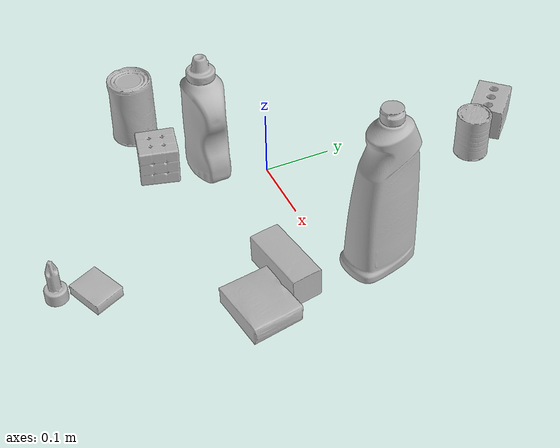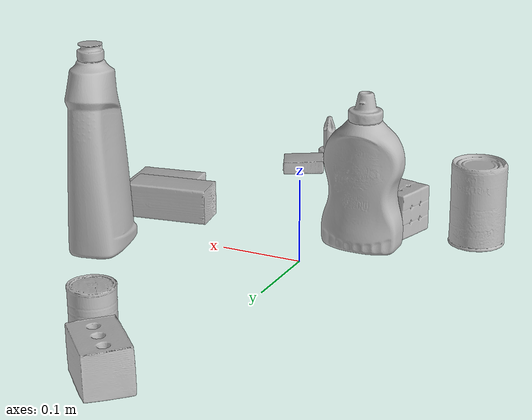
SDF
<sdf version="1.4">
  <world name="default">
    <light name="light1" type="point">
      <pose>0 0 1 0 0 0</pose>
      <diffuse>3 3 3 1</diffuse>
      <specular>3 3 3 1</specular>
    </light>
    <light name="light2" type="point">
      <pose>0 0.5 2 0 0 0</pose>
      <diffuse>1 1 1 1</diffuse>
      <specular>1 1 1 1</specular>
    </light>
    <light name="light3" type="point">
      <pose>0 0.5 2 0 0 0</pose>
      <diffuse>3 3 3 1</diffuse>
      <specular>3 3 3 1</specular>
    </light>
    <scene>
      <ambient>0.7 0.7 0.7</ambient>
    </scene>
    <model name="bottle1">
      <link name="link_bottle1">
        <collision name="default">
          <geometry>
            <mesh>
              <uri>model://bleach_cleanser/collision_meshes/collision.obj</uri>
              <scale>1.0 1.0 1.0</scale>
            </mesh>
          </geometry>
          <surface>
            <friction>
              <ode>
                <mu>0.5</mu>
                <mu2>0.5</mu2>
              </ode>
            </friction>
          <contact>
        <ode>
            <max_vel>0</max_vel>
            <min_depth>0.0001</min_depth>
            <kp>1e8</kp>
        </ode>
    </contact></surface>
        </collision>
        <visual name="default">
          <geometry>
            <mesh>
              <uri>model://bleach_cleanser/visual_meshes/visual.dae</uri>
              <scale>1.0 1.0 1.0</scale>
            </mesh>
          </geometry>
        </visual>
        <inertial>
          <mass>1.1050143241882324</mass>
          <pose>0.00012193183647468686 0.0037838828284293413 -0.02442161738872528 -0.07381670616137478 0.0004201160282461273 -0.006875061809122935</pose>
          <inertia>
            <ixx>0.0053782654</ixx>
            <iyy>0.005011756</iyy>
            <izz>0.00091954356</izz>
            <ixy>0</ixy>
            <ixz>0</ixz>
            <iyz>0</iyz>
          </inertia>
        </inertial>
      </link>
      <pose>0.23380403220653534 0.058387577533721924 0.12578414380550385 -0.00020023140828842834 1.6136938784707848e-05 0.22904293833883477</pose>
    </model>
    <model name="bottle2">
      <link name="link_bottle2">
        <collision name="default">
          <geometry>
            <mesh>
              <uri>model://mustard_bottle/collision_meshes/collision.obj</uri>
              <scale>1.0 1.0 1.0</scale>
            </mesh>
          </geometry>
          <surface>
            <friction>
              <ode>
                <mu>0.5</mu>
                <mu2>0.5</mu2>
              </ode>
            </friction>
          <contact>
        <ode>
            <max_vel>0</max_vel>
            <min_depth>0.0001</min_depth>
            <kp>1e8</kp>
        </ode>
    </contact></surface>
        </collision>
        <visual name="default">
          <geometry>
            <mesh>
              <uri>model://mustard_bottle/visual_meshes/visual.dae</uri>
              <scale>1.0 1.0 1.0</scale>
            </mesh>
          </geometry>
        </visual>
        <inertial>
          <mass>0.622285008430481</mass>
          <pose>0.0005032453336752951 -0.0001564739941386506 -0.0174757931381464 0.0004182326458762318 0.0009465782998157723 0.024853714910341117</pose>
          <inertia>
            <ixx>0.0017280002</ixx>
            <iyy>0.0015161741</iyy>
            <izz>0.00045541534</izz>
            <ixy>0</ixy>
            <ixz>0</ixz>
            <iyz>0</iyz>
          </inertia>
        </inertial>
      </link>
      <pose>-0.048559993505477905 -0.07424908876419067 0.09583085030317307 -0.012050690103097159 -0.004889907229050229 1.5787136312926349</pose>
    </model>
    <model name="toy1">
      <link name="link_toy1">
        <collision name="default">
          <geometry>
            <mesh>
              <uri>model://foam_brick/collision_meshes/collision.obj</uri>
              <scale>1.0 1.0 1.0</scale>
            </mesh>
          </geometry>
          <surface>
            <friction>
              <ode>
                <mu>0.5</mu>
                <mu2>0.5</mu2>
              </ode>
            </friction>
          <contact>
        <ode>
            <max_vel>0</max_vel>
            <min_depth>0.0001</min_depth>
            <kp>1e8</kp>
        </ode>
    </contact></surface>
        </collision>
        <visual name="default">
          <geometry>
            <mesh>
              <uri>model://foam_brick/visual_meshes/visual.dae</uri>
              <scale>1.0 1.0 1.0</scale>
            </mesh>
          </geometry>
        </visual>
        <inertial>
          <mass>0.1664208173751831</mass>
          <pose>-0.00025224717683158815 0.0003458438441157341 -0.00025321010616607964 -0.2940189404221327 0.017274440573450563 -0.0007449871782747126</pose>
          <inertia>
            <ixx>7.269573e-05</ixx>
            <iyy>0.00011606247</iyy>
            <izz>0.000117537464</izz>
            <ixy>0</ixy>
            <ixz>0</ixz>
            <iyz>0</iyz>
          </inertia>
        </inertial>
      </link>
      <pose>0.04476997256278992 0.3555777072906494 0.025922808796167374 0.013417158008566672 0.004153053402075235 2.3622889449147686</pose>
    </model>
    <model name="toy2">
      <link name="link_toy2">
        <collision name="default">
          <geometry>
            <mesh>
              <uri>model://d_toy_airplane/collision_meshes/collision.obj</uri>
              <scale>1.0 1.0 1.0</scale>
            </mesh>
          </geometry>
          <surface>
            <friction>
              <ode>
                <mu>0.5</mu>
                <mu2>0.5</mu2>
              </ode>
            </friction>
          <contact>
        <ode>
            <max_vel>0</max_vel>
            <min_depth>0.0001</min_depth>
            <kp>1e8</kp>
        </ode>
    </contact></surface>
        </collision>
        <visual name="default">
          <geometry>
            <mesh>
              <uri>model://d_toy_airplane/visual_meshes/visual.dae</uri>
              <scale>1.0 1.0 1.0</scale>
            </mesh>
          </geometry>
        </visual>
        <inertial>
          <mass>0.021938346326351166</mass>
          <pose>9.410325583303347e-05 -5.8093231928069144e-05 -0.01172809861600399 0.0002669142468379238 0.0046790018194854816 0.5194488187392164</pose>
          <inertia>
            <ixx>6.5766894e-06</ixx>
            <iyy>6.581649e-06</iyy>
            <izz>1.9855454e-06</izz>
            <ixy>0</ixy>
            <ixz>0</ixz>
            <iyz>0</iyz>
          </inertia>
        </inertial>
      </link>
      <pose>0.11647948622703552 -0.3481197655200958 0.03333848714828491 -0.00018282177467666226 -0.00029341818180630166 -2.2738181186144524</pose>
    </model>
    <model name="can1">
      <link name="link_can1">
        <collision name="default">
          <geometry>
            <mesh>
              <uri>model://tomato_soup_can/collision_meshes/collision.obj</uri>
              <scale>1.0 1.0 1.0</scale>
            </mesh>
          </geometry>
          <surface>
            <friction>
              <ode>
                <mu>0.5</mu>
                <mu2>0.5</mu2>
              </ode>
            </friction>
          <contact>
        <ode>
            <max_vel>0</max_vel>
            <min_depth>0.0001</min_depth>
            <kp>1e8</kp>
        </ode>
    </contact></surface>
        </collision>
        <visual name="default">
          <geometry>
            <mesh>
              <uri>model://tomato_soup_can/visual_meshes/visual.dae</uri>
              <scale>1.0 1.0 1.0</scale>
            </mesh>
          </geometry>
        </visual>
        <inertial>
          <mass>0.39673706889152527</mass>
          <pose>0.00012652271834667772 0.00010805520287249237 -0.0017973972717300057 0.007020066809275346 0.000422998323222239 -0.009903841103285913</pose>
          <inertia>
            <ixx>0.00043498844</ixx>
            <iyy>0.00043247454</iyy>
            <izz>0.00022545052</izz>
            <ixy>0</ixy>
            <ixz>0</ixz>
            <iyz>0</iyz>
          </inertia>
        </inertial>
      </link>
      <pose>-0.1671464592218399 -0.1464332938194275 0.051273513585329056 3.1415914427532887 3.069800464914356e-05 1.5636552889388724</pose>
    </model>
    <model name="can2">
      <link name="link_can2">
        <collision name="default">
          <geometry>
            <mesh>
              <uri>model://master_chef_can/collision_meshes/collision.obj</uri>
              <scale>0.5 0.5 0.5</scale>
            </mesh>
          </geometry>
          <surface>
            <friction>
              <ode>
                <mu>0.5</mu>
                <mu2>0.5</mu2>
              </ode>
            </friction>
          <contact>
        <ode>
            <max_vel>0</max_vel>
            <min_depth>0.0001</min_depth>
            <kp>1e8</kp>
        </ode>
    </contact></surface>
        </collision>
        <visual name="default">
          <geometry>
            <mesh>
              <uri>model://master_chef_can/visual_meshes/visual.dae</uri>
              <scale>0.5 0.5 0.5</scale>
            </mesh>
          </geometry>
        </visual>
        <inertial>
          <mass>0.08835740387439728</mass>
          <pose>-4.6619654312962666e-05 1.3926853625889635e-07 -5.079947004560381e-05 -0.0017995147102642629 0.0006479189020740588 -0.6102650934471076</pose>
          <inertia>
            <ixx>5.1859814e-05</ixx>
            <iyy>5.1478128e-05</iyy>
            <izz>2.8656508e-05</izz>
            <ixy>0</ixy>
            <ixz>0</ixz>
            <iyz>0</iyz>
          </inertia>
        </inertial>
      </link>
      <pose>0.09187665581703186 0.294036328792572 0.03530198708176613 -7.454192384766682e-07 -7.64255147446797e-07 2.8532925801314475</pose>
    </model>
    <model name="box1">
      <link name="link_box1">
        <collision name="default">
          <geometry>
            <mesh>
              <uri>model://wood_block/collision_meshes/collision.obj</uri>
              <scale>0.5 0.5 0.5</scale>
            </mesh>
          </geometry>
          <surface>
            <friction>
              <ode>
                <mu>0.5</mu>
                <mu2>0.5</mu2>
              </ode>
            </friction>
          <contact>
        <ode>
            <max_vel>0</max_vel>
            <min_depth>0.0001</min_depth>
            <kp>1e8</kp>
        </ode>
    </contact></surface>
        </collision>
        <visual name="default">
          <geometry>
            <mesh>
              <uri>model://wood_block/visual_meshes/visual.dae</uri>
              <scale>0.5 0.5 0.5</scale>
            </mesh>
          </geometry>
        </visual>
        <inertial>
          <mass>0.15377527475357056</mass>
          <pose>-2.9066577553749084e-06 -0.000285404734313488 0.00013204291462898254 -0.05220825990774677 -0.0051926953585221414 -0.0068613782788382646</pose>
          <inertia>
            <ixx>5.1443654e-05</ixx>
            <iyy>0.00016251049</iyy>
            <izz>0.00016190263</izz>
            <ixy>0</ixy>
            <ixz>0</ixz>
            <iyz>0</iyz>
          </inertia>
        </inertial>
      </link>
      <pose>0.20898282527923584 -0.06646277010440826 0.02262926660478115 -0.0052085574904646645 0.0057187302868590625 -2.988648139646715</pose>
    </model>
    <model name="box2">
      <link name="link_box2">
        <collision name="default">
          <geometry>
            <mesh>
              <uri>model://rubiks_cube/collision_meshes/collision.obj</uri>
              <scale>1.0 1.0 1.0</scale>
            </mesh>
          </geometry>
          <surface>
            <friction>
              <ode>
                <mu>0.5</mu>
                <mu2>0.5</mu2>
              </ode>
            </friction>
          <contact>
        <ode>
            <max_vel>0</max_vel>
            <min_depth>0.0001</min_depth>
            <kp>1e8</kp>
        </ode>
    </contact></surface>
        </collision>
        <visual name="default">
          <geometry>
            <mesh>
              <uri>model://rubiks_cube/visual_meshes/visual.dae</uri>
              <scale>1.0 1.0 1.0</scale>
            </mesh>
          </geometry>
        </visual>
        <inertial>
          <mass>0.2856966555118561</mass>
          <pose>2.6721041649580002e-05 5.2569666877388954e-05 -7.264316082000732e-06 -0.05467209736319516 -0.09813912050272719 -0.034455106160143086</pose>
          <inertia>
            <ixx>0.00015786657</ixx>
            <iyy>0.00015713037</iyy>
            <izz>0.00015917476</izz>
            <ixy>0</ixy>
            <ixz>0</ixz>
            <iyz>0</iyz>
          </inertia>
        </inertial>
      </link>
      <pose>-0.06503663957118988 -0.1436968594789505 0.028678979724645615 -3.2343169454160525e-06 -8.677649729058546e-07 -0.23076270404415644</pose>
    </model>
    <model name="box3">
      <link name="link_box3">
        <collision name="default">
          <geometry>
            <mesh>
              <uri>model://gelatin_box/collision_meshes/collision.obj</uri>
              <scale>1.0 1.0 1.0</scale>
            </mesh>
          </geometry>
          <surface>
            <friction>
              <ode>
                <mu>0.5</mu>
                <mu2>0.5</mu2>
              </ode>
            </friction>
          <contact>
        <ode>
            <max_vel>0</max_vel>
            <min_depth>0.0001</min_depth>
            <kp>1e8</kp>
        </ode>
    </contact></surface>
        </collision>
        <visual name="default">
          <geometry>
            <mesh>
              <uri>model://gelatin_box/visual_meshes/visual.dae</uri>
              <scale>1.0 1.0 1.0</scale>
            </mesh>
          </geometry>
        </visual>
        <inertial>
          <mass>0.24612535536289215</mass>
          <pose>0.0004319618456065655 0.00011156871914863586 -0.00036403213744051754 -0.0010503719772071295 -0.004755818223732799 0.016440561334178715</pose>
          <inertia>
            <ixx>0.00017374444</ixx>
            <iyy>0.00012410474</iyy>
            <izz>0.00026447774</izz>
            <ixy>0</ixy>
            <ixz>0</ixz>
            <iyz>0</iyz>
          </inertia>
        </inertial>
      </link>
      <pose>0.25142335891723633 -0.12050183117389679 0.01516831386834383 0.00559748924081939 -0.007304576413739942 1.7035974956140318</pose>
    </model>
    <model name="box4">
      <link name="link_box4">
        <collision name="default">
          <geometry>
            <mesh>
              <uri>model://pudding_box/collision_meshes/collision.obj</uri>
              <scale>0.5 0.5 0.5</scale>
            </mesh>
          </geometry>
          <surface>
            <friction>
              <ode>
                <mu>0.5</mu>
                <mu2>0.5</mu2>
              </ode>
            </friction>
          <contact>
        <ode>
            <max_vel>0</max_vel>
            <min_depth>0.0001</min_depth>
            <kp>1e8</kp>
        </ode>
    </contact></surface>
        </collision>
        <visual name="default">
          <geometry>
            <mesh>
              <uri>model://pudding_box/visual_meshes/visual.dae</uri>
              <scale>0.5 0.5 0.5</scale>
            </mesh>
          </geometry>
        </visual>
        <inertial>
          <mass>0.025328172370791435</mass>
          <pose>0.00024474109522998333 0.00040339428232982755 -0.0002594413817860186 0.00521310085836893 -0.006603797787762854 0.020079828890944847</pose>
          <inertia>
            <ixx>7.15805e-06</ixx>
            <iyy>4.8159864e-06</iyy>
            <izz>1.0570731e-05</izz>
            <ixy>0</ixy>
            <ixz>0</ixz>
            <iyz>0</iyz>
          </inertia>
        </inertial>
      </link>
      <pose>0.1341775804758072 -0.3003574013710022 0.009862902574241161 0.022348455083865147 -0.011391750082236592 1.9850294078074977</pose>
    </model>
  <physics type="ode">
      <max_contacts>50</max_contacts>
      <ode>
        <solver>
          <type>quick</type>
          <iters>75</iters>
        </solver>
        <constraints>
          <contact_max_correcting_vel>0</contact_max_correcting_vel>
          <contact_surface_layer>0</contact_surface_layer>
        </constraints>
      </ode>
    </physics></world>
</sdf>
